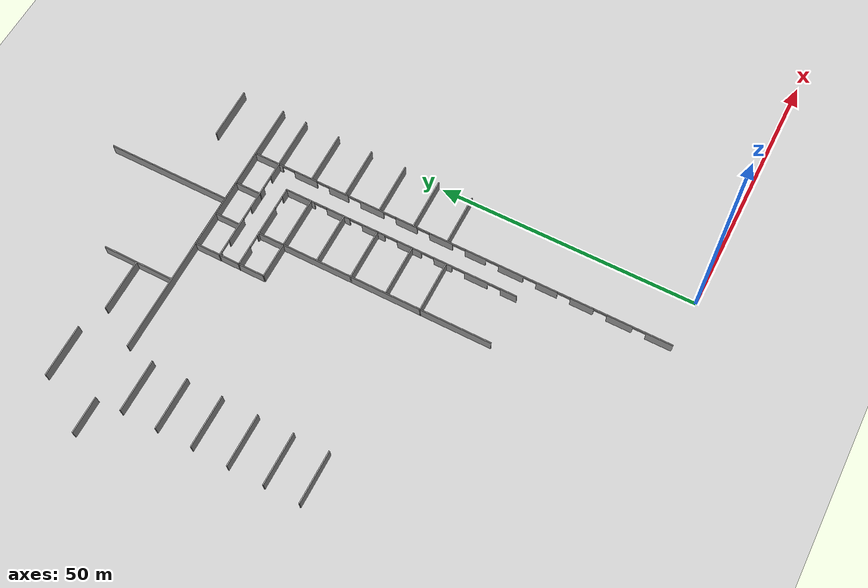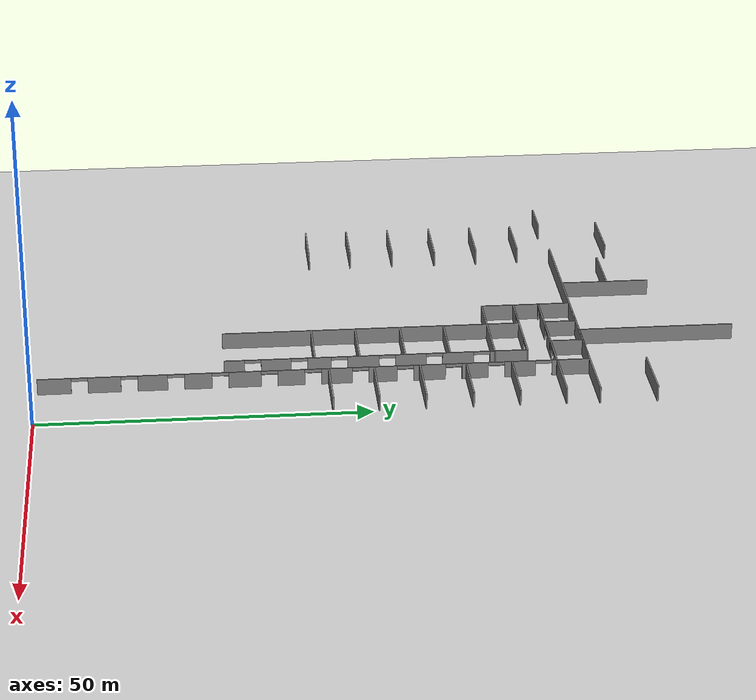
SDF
<sdf version="1.6">
 <world name="default">
  <model name="ground_plane">
   <static>1</static>
   <link name="link">
    <collision name="collision">
     <geometry><plane><normal>0 0 1</normal><size>100 100</size></plane></geometry>
     <surface><friction><ode><mu>100</mu><mu2>50</mu2></ode></friction></surface>
    </collision>
    <visual name="visual">
     <cast_shadows>0</cast_shadows>
     <geometry><plane><normal>0 0 1</normal><size>100 100</size></plane></geometry>
     <material>
      <script><uri>file://media/materials/scripts/gazebo.material</uri><name>Gazebo/Grey</name></script>
     </material>
    </visual>
   </link>
  </model>
  <model name="Jacaranda_v4">
   <link name="Wall_0">
    <pose>-8.84429 26.2823 0 0 -0 0</pose>
    <visual name="Wall_0_Visual_0">
     <pose>-10.1136 0 1.25 0 -0 0</pose>
     <geometry><box><size>0.772872 0.2 2.5</size></box></geometry>
     <material>
      <script><uri>file://media/materials/scripts/gazebo.material</uri><name>Gazebo/Grey</name></script>
     </material>
    </visual>
    <collision name="Wall_0_Collision_0">
     <geometry><box><size>0.772872 0.2 2.5</size></box></geometry>
     <pose>-10.1136 0 1.25 0 -0 0</pose>
    </collision>
    <visual name="Wall_0_Visual_1">
     <pose>-4.7572 0 1.25 0 -0 0</pose>
     <geometry><box><size>4.93987 0.2 2.5</size></box></geometry>
     <material>
      <script><uri>file://media/materials/scripts/gazebo.material</uri><name>Gazebo/Grey</name></script>
     </material>
    </visual>
    <collision name="Wall_0_Collision_1">
     <geometry><box><size>4.93987 0.2 2.5</size></box></geometry>
     <pose>-4.7572 0 1.25 0 -0 0</pose>
    </collision>
    <visual name="Wall_0_Visual_2">
     <pose>2.52116 0 1.25 0 -0 0</pose>
     <geometry><box><size>4.61684 0.2 2.5</size></box></geometry>
     <material>
      <script><uri>file://media/materials/scripts/gazebo.material</uri><name>Gazebo/Grey</name></script>
     </material>
    </visual>
    <collision name="Wall_0_Collision_2">
     <geometry><box><size>4.61684 0.2 2.5</size></box></geometry>
     <pose>2.52116 0 1.25 0 -0 0</pose>
    </collision>
    <visual name="Wall_0_Visual_3">
     <pose>8.91479 0 1.25 0 -0 0</pose>
     <geometry><box><size>3.17042 0.2 2.5</size></box></geometry>
     <material>
      <script><uri>file://media/materials/scripts/gazebo.material</uri><name>Gazebo/Grey</name></script>
     </material>
    </visual>
    <collision name="Wall_0_Collision_3">
     <geometry><box><size>3.17042 0.2 2.5</size></box></geometry>
     <pose>8.91479 0 1.25 0 -0 0</pose>
    </collision>
    <visual name="Wall_0_Visual_4">
     <pose>-8.47713 0 2.25 0 -0 0</pose>
     <geometry><box><size>2.5 0.2 0.5</size></box></geometry>
     <material>
      <script><uri>file://media/materials/scripts/gazebo.material</uri><name>Gazebo/Grey</name></script>
     </material>
    </visual>
    <collision name="Wall_0_Collision_4">
     <geometry><box><size>2.5 0.2 0.5</size></box></geometry>
     <pose>-8.47713 0 2.25 0 -0 0</pose>
    </collision>
    <visual name="Wall_0_Visual_5">
     <pose>-1.03726 0 2.25 0 -0 0</pose>
     <geometry><box><size>2.5 0.2 0.5</size></box></geometry>
     <material>
      <script><uri>file://media/materials/scripts/gazebo.material</uri><name>Gazebo/Grey</name></script>
     </material>
    </visual>
    <collision name="Wall_0_Collision_5">
     <geometry><box><size>2.5 0.2 0.5</size></box></geometry>
     <pose>-1.03726 0 2.25 0 -0 0</pose>
    </collision>
    <visual name="Wall_0_Visual_6">
     <pose>6.07958 0 2.25 0 -0 0</pose>
     <geometry><box><size>2.5 0.2 0.5</size></box></geometry>
     <material>
      <script><uri>file://media/materials/scripts/gazebo.material</uri><name>Gazebo/Grey</name></script>
     </material>
    </visual>
    <collision name="Wall_0_Collision_6">
     <geometry><box><size>2.5 0.2 0.5</size></box></geometry>
     <pose>6.07958 0 2.25 0 -0 0</pose>
    </collision>
   </link>
   <link name="Wall_2">
    <collision name="Wall_2_Collision">
     <geometry><box><size>10 0.2 2.5</size></box></geometry>
     <pose>0 0 1.25 0 -0 0</pose>
    </collision>
    <visual name="Wall_2_Visual">
     <pose>0 0 1.25 0 -0 0</pose>
     <geometry><box><size>10 0.2 2.5</size></box></geometry>
     <material>
      <script><uri>file://media/materials/scripts/gazebo.material</uri><name>Gazebo/Grey</name></script>
     </material>
    </visual>
    <velocity_decay><linear>0</linear><angular>0</angular></velocity_decay>
    <pose>-7.44654 3.56016 0 0 -0 0</pose>
   </link>
   <link name="Wall_22">
    <collision name="Wall_22_Collision">
     <geometry><box><size>5 0.2 2.5</size></box></geometry>
     <pose>0 0 1.25 0 -0 0</pose>
    </collision>
    <visual name="Wall_22_Visual">
     <pose>0 0 1.25 0 -0 0</pose>
     <geometry><box><size>5 0.2 2.5</size></box></geometry>
     <material>
      <script><uri>file://media/materials/scripts/gazebo.material</uri><name>Gazebo/Grey</name></script>
     </material>
    </visual>
    <velocity_decay><linear>0</linear><angular>0</angular></velocity_decay>
    <pose>-19.2226 28.7685 0 0 -0 1.5708</pose>
   </link>
   <link name="Wall_24">
    <collision name="Wall_24_Collision">
     <geometry><box><size>7 0.2 2.5</size></box></geometry>
     <pose>0 0 1.25 0 -0 0</pose>
    </collision>
    <visual name="Wall_24_Visual">
     <pose>0 0 1.25 0 -0 0</pose>
     <geometry><box><size>7 0.2 2.5</size></box></geometry>
     <material>
      <script><uri>file://media/materials/scripts/gazebo.material</uri><name>Gazebo/Grey</name></script>
     </material>
    </visual>
    <velocity_decay><linear>0</linear><angular>0</angular></velocity_decay>
    <pose>-15.7827 31.2426 0 0 -0 0</pose>
   </link>
   <link name="Wall_26">
    <collision name="Wall_26_Collision">
     <geometry><box><size>5 0.2 2.5</size></box></geometry>
     <pose>0 0 1.25 0 -0 0</pose>
    </collision>
    <visual name="Wall_26_Visual">
     <pose>0 0 1.25 0 -0 0</pose>
     <geometry><box><size>5 0.2 2.5</size></box></geometry>
     <material>
      <script><uri>file://media/materials/scripts/gazebo.material</uri><name>Gazebo/Grey</name></script>
     </material>
    </visual>
    <velocity_decay><linear>0</linear><angular>0</angular></velocity_decay>
    <pose>-12.42 28.8426 0 0 0 -1.5708</pose>
   </link>
   <link name="Wall_29">
    <collision name="Wall_29_Collision">
     <geometry><box><size>7 0.2 2.5</size></box></geometry>
     <pose>0 0 1.25 0 -0 0</pose>
    </collision>
    <visual name="Wall_29_Visual">
     <pose>0 0 1.25 0 -0 0</pose>
     <geometry><box><size>7 0.2 2.5</size></box></geometry>
     <material>
      <script><uri>file://media/materials/scripts/gazebo.material</uri><name>Gazebo/Grey</name></script>
     </material>
    </visual>
    <velocity_decay><linear>0</linear><angular>0</angular></velocity_decay>
    <pose>-8.85634 31.2426 0 0 -0 0</pose>
   </link>
   <link name="Wall_31">
    <collision name="Wall_31_Collision">
     <geometry><box><size>5 0.2 2.5</size></box></geometry>
     <pose>0 0 1.25 0 -0 0</pose>
    </collision>
    <visual name="Wall_31_Visual">
     <pose>0 0 1.25 0 -0 0</pose>
     <geometry><box><size>5 0.2 2.5</size></box></geometry>
     <material>
      <script><uri>file://media/materials/scripts/gazebo.material</uri><name>Gazebo/Grey</name></script>
     </material>
    </visual>
    <velocity_decay><linear>0</linear><angular>0</angular></velocity_decay>
    <pose>-5.3828 28.6789 0 0 0 -1.5708</pose>
   </link>
   <link name="Wall_33">
    <collision name="Wall_33_Collision">
     <geometry><box><size>7 0.2 2.5</size></box></geometry>
     <pose>0 0 1.25 0 -0 0</pose>
    </collision>
    <visual name="Wall_33_Visual">
     <pose>0 0 1.25 0 -0 0</pose>
     <geometry><box><size>7 0.2 2.5</size></box></geometry>
     <material>
      <script><uri>file://media/materials/scripts/gazebo.material</uri><name>Gazebo/Grey</name></script>
     </material>
    </visual>
    <velocity_decay><linear>0</linear><angular>0</angular></velocity_decay>
    <pose>-1.87207 31.2789 0 0 -0 0</pose>
   </link>
   <link name="Wall_35">
    <pose>1.50679 -10.3195 0 0 0 -1.5708</pose>
    <visual name="Wall_35_Visual_0">
     <pose>-38.7718 0 1.25 0 -0 0</pose>
     <geometry><box><size>5.89333 0.2 2.5</size></box></geometry>
     <material>
      <script><uri>file://media/materials/scripts/gazebo.material</uri><name>Gazebo/Grey</name></script>
     </material>
    </visual>
    <collision name="Wall_35_Collision_0">
     <geometry><box><size>5.89333 0.2 2.5</size></box></geometry>
     <pose>-38.7718 0 1.25 0 -0 0</pose>
    </collision>
    <visual name="Wall_35_Visual_1">
     <pose>-30.9611 0 1.25 0 -0 0</pose>
     <geometry><box><size>4.72808 0.2 2.5</size></box></geometry>
     <material>
      <script><uri>file://media/materials/scripts/gazebo.material</uri><name>Gazebo/Grey</name></script>
     </material>
    </visual>
    <collision name="Wall_35_Collision_1">
     <geometry><box><size>4.72808 0.2 2.5</size></box></geometry>
     <pose>-30.9611 0 1.25 0 -0 0</pose>
    </collision>
    <visual name="Wall_35_Visual_2">
     <pose>-24.0927 0 1.25 0 -0 0</pose>
     <geometry><box><size>4.00867 0.2 2.5</size></box></geometry>
     <material>
      <script><uri>file://media/materials/scripts/gazebo.material</uri><name>Gazebo/Grey</name></script>
     </material>
    </visual>
    <collision name="Wall_35_Collision_2">
     <geometry><box><size>4.00867 0.2 2.5</size></box></geometry>
     <pose>-24.0927 0 1.25 0 -0 0</pose>
    </collision>
    <visual name="Wall_35_Visual_3">
     <pose>-17.1876 0 1.25 0 -0 0</pose>
     <geometry><box><size>4.80162 0.2 2.5</size></box></geometry>
     <material>
      <script><uri>file://media/materials/scripts/gazebo.material</uri><name>Gazebo/Grey</name></script>
     </material>
    </visual>
    <collision name="Wall_35_Collision_3">
     <geometry><box><size>4.80162 0.2 2.5</size></box></geometry>
     <pose>-17.1876 0 1.25 0 -0 0</pose>
    </collision>
    <visual name="Wall_35_Visual_4">
     <pose>-10.1336 0 1.25 0 -0 0</pose>
     <geometry><box><size>4.3064 0.2 2.5</size></box></geometry>
     <material>
      <script><uri>file://media/materials/scripts/gazebo.material</uri><name>Gazebo/Grey</name></script>
     </material>
    </visual>
    <collision name="Wall_35_Collision_4">
     <geometry><box><size>4.3064 0.2 2.5</size></box></geometry>
     <pose>-10.1336 0 1.25 0 -0 0</pose>
    </collision>
    <visual name="Wall_35_Visual_5">
     <pose>-3.14147 0 1.25 0 -0 0</pose>
     <geometry><box><size>4.67776 0.2 2.5</size></box></geometry>
     <material>
      <script><uri>file://media/materials/scripts/gazebo.material</uri><name>Gazebo/Grey</name></script>
     </material>
    </visual>
    <collision name="Wall_35_Collision_5">
     <geometry><box><size>4.67776 0.2 2.5</size></box></geometry>
     <pose>-3.14147 0 1.25 0 -0 0</pose>
    </collision>
    <visual name="Wall_35_Visual_6">
     <pose>3.7295 0 1.25 0 -0 0</pose>
     <geometry><box><size>4.06418 0.2 2.5</size></box></geometry>
     <material>
      <script><uri>file://media/materials/scripts/gazebo.material</uri><name>Gazebo/Grey</name></script>
     </material>
    </visual>
    <collision name="Wall_35_Collision_6">
     <geometry><box><size>4.06418 0.2 2.5</size></box></geometry>
     <pose>3.7295 0 1.25 0 -0 0</pose>
    </collision>
    <visual name="Wall_35_Visual_7">
     <pose>10.6976 0 1.25 0 -0 0</pose>
     <geometry><box><size>4.872 0.2 2.5</size></box></geometry>
     <material>
      <script><uri>file://media/materials/scripts/gazebo.material</uri><name>Gazebo/Grey</name></script>
     </material>
    </visual>
    <collision name="Wall_35_Collision_7">
     <geometry><box><size>4.872 0.2 2.5</size></box></geometry>
     <pose>10.6976 0 1.25 0 -0 0</pose>
    </collision>
    <visual name="Wall_35_Visual_8">
     <pose>17.7003 0 1.25 0 -0 0</pose>
     <geometry><box><size>4.13333 0.2 2.5</size></box></geometry>
     <material>
      <script><uri>file://media/materials/scripts/gazebo.material</uri><name>Gazebo/Grey</name></script>
     </material>
    </visual>
    <collision name="Wall_35_Collision_8">
     <geometry><box><size>4.13333 0.2 2.5</size></box></geometry>
     <pose>17.7003 0 1.25 0 -0 0</pose>
    </collision>
    <visual name="Wall_35_Visual_9">
     <pose>24.507 0 1.25 0 -0 0</pose>
     <geometry><box><size>4.48015 0.2 2.5</size></box></geometry>
     <material>
      <script><uri>file://media/materials/scripts/gazebo.material</uri><name>Gazebo/Grey</name></script>
     </material>
    </visual>
    <collision name="Wall_35_Collision_9">
     <geometry><box><size>4.48015 0.2 2.5</size></box></geometry>
     <pose>24.507 0 1.25 0 -0 0</pose>
    </collision>
    <visual name="Wall_35_Visual_10">
     <pose>31.7056 0 1.25 0 -0 0</pose>
     <geometry><box><size>4.91715 0.2 2.5</size></box></geometry>
     <material>
      <script><uri>file://media/materials/scripts/gazebo.material</uri><name>Gazebo/Grey</name></script>
     </material>
    </visual>
    <collision name="Wall_35_Collision_10">
     <geometry><box><size>4.91715 0.2 2.5</size></box></geometry>
     <pose>31.7056 0 1.25 0 -0 0</pose>
    </collision>
    <visual name="Wall_35_Visual_11">
     <pose>39.1913 0 1.25 0 -0 0</pose>
     <geometry><box><size>5.05424 0.2 2.5</size></box></geometry>
     <material>
      <script><uri>file://media/materials/scripts/gazebo.material</uri><name>Gazebo/Grey</name></script>
     </material>
    </visual>
    <collision name="Wall_35_Collision_11">
     <geometry><box><size>5.05424 0.2 2.5</size></box></geometry>
     <pose>39.1913 0 1.25 0 -0 0</pose>
    </collision>
    <visual name="Wall_35_Visual_12">
     <pose>-34.5751 0 2.25 0 -0 0</pose>
     <geometry><box><size>2.5 0.2 0.5</size></box></geometry>
     <material>
      <script><uri>file://media/materials/scripts/gazebo.material</uri><name>Gazebo/Grey</name></script>
     </material>
    </visual>
    <collision name="Wall_35_Collision_12">
     <geometry><box><size>2.5 0.2 0.5</size></box></geometry>
     <pose>-34.5751 0 2.25 0 -0 0</pose>
    </collision>
    <visual name="Wall_35_Visual_13">
     <pose>-27.347 0 2.25 0 -0 0</pose>
     <geometry><box><size>2.5 0.2 0.5</size></box></geometry>
     <material>
      <script><uri>file://media/materials/scripts/gazebo.material</uri><name>Gazebo/Grey</name></script>
     </material>
    </visual>
    <collision name="Wall_35_Collision_13">
     <geometry><box><size>2.5 0.2 0.5</size></box></geometry>
     <pose>-27.347 0 2.25 0 -0 0</pose>
    </collision>
    <visual name="Wall_35_Visual_14">
     <pose>-20.8384 0 2.25 0 -0 0</pose>
     <geometry><box><size>2.5 0.2 0.5</size></box></geometry>
     <material>
      <script><uri>file://media/materials/scripts/gazebo.material</uri><name>Gazebo/Grey</name></script>
     </material>
    </visual>
    <collision name="Wall_35_Collision_14">
     <geometry><box><size>2.5 0.2 0.5</size></box></geometry>
     <pose>-20.8384 0 2.25 0 -0 0</pose>
    </collision>
    <visual name="Wall_35_Visual_15">
     <pose>-13.5368 0 2.25 0 -0 0</pose>
     <geometry><box><size>2.5 0.2 0.5</size></box></geometry>
     <material>
      <script><uri>file://media/materials/scripts/gazebo.material</uri><name>Gazebo/Grey</name></script>
     </material>
    </visual>
    <collision name="Wall_35_Collision_15">
     <geometry><box><size>2.5 0.2 0.5</size></box></geometry>
     <pose>-13.5368 0 2.25 0 -0 0</pose>
    </collision>
    <visual name="Wall_35_Visual_16">
     <pose>-6.73035 0 2.25 0 -0 0</pose>
     <geometry><box><size>2.5 0.2 0.5</size></box></geometry>
     <material>
      <script><uri>file://media/materials/scripts/gazebo.material</uri><name>Gazebo/Grey</name></script>
     </material>
    </visual>
    <collision name="Wall_35_Collision_16">
     <geometry><box><size>2.5 0.2 0.5</size></box></geometry>
     <pose>-6.73035 0 2.25 0 -0 0</pose>
    </collision>
    <visual name="Wall_35_Visual_17">
     <pose>0.447409 0 2.25 0 -0 0</pose>
     <geometry><box><size>2.5 0.2 0.5</size></box></geometry>
     <material>
      <script><uri>file://media/materials/scripts/gazebo.material</uri><name>Gazebo/Grey</name></script>
     </material>
    </visual>
    <collision name="Wall_35_Collision_17">
     <geometry><box><size>2.5 0.2 0.5</size></box></geometry>
     <pose>0.447409 0 2.25 0 -0 0</pose>
    </collision>
    <visual name="Wall_35_Visual_18">
     <pose>7.01159 0 2.25 0 -0 0</pose>
     <geometry><box><size>2.5 0.2 0.5</size></box></geometry>
     <material>
      <script><uri>file://media/materials/scripts/gazebo.material</uri><name>Gazebo/Grey</name></script>
     </material>
    </visual>
    <collision name="Wall_35_Collision_18">
     <geometry><box><size>2.5 0.2 0.5</size></box></geometry>
     <pose>7.01159 0 2.25 0 -0 0</pose>
    </collision>
    <visual name="Wall_35_Visual_19">
     <pose>14.3836 0 2.25 0 -0 0</pose>
     <geometry><box><size>2.5 0.2 0.5</size></box></geometry>
     <material>
      <script><uri>file://media/materials/scripts/gazebo.material</uri><name>Gazebo/Grey</name></script>
     </material>
    </visual>
    <collision name="Wall_35_Collision_19">
     <geometry><box><size>2.5 0.2 0.5</size></box></geometry>
     <pose>14.3836 0 2.25 0 -0 0</pose>
    </collision>
    <visual name="Wall_35_Visual_20">
     <pose>21.0169 0 2.25 0 -0 0</pose>
     <geometry><box><size>2.5 0.2 0.5</size></box></geometry>
     <material>
      <script><uri>file://media/materials/scripts/gazebo.material</uri><name>Gazebo/Grey</name></script>
     </material>
    </visual>
    <collision name="Wall_35_Collision_20">
     <geometry><box><size>2.5 0.2 0.5</size></box></geometry>
     <pose>21.0169 0 2.25 0 -0 0</pose>
    </collision>
    <visual name="Wall_35_Visual_21">
     <pose>27.9971 0 2.25 0 -0 0</pose>
     <geometry><box><size>2.5 0.2 0.5</size></box></geometry>
     <material>
      <script><uri>file://media/materials/scripts/gazebo.material</uri><name>Gazebo/Grey</name></script>
     </material>
    </visual>
    <collision name="Wall_35_Collision_21">
     <geometry><box><size>2.5 0.2 0.5</size></box></geometry>
     <pose>27.9971 0 2.25 0 -0 0</pose>
    </collision>
    <visual name="Wall_35_Visual_22">
     <pose>35.4142 0 2.25 0 -0 0</pose>
     <geometry><box><size>2.5 0.2 0.5</size></box></geometry>
     <material>
      <script><uri>file://media/materials/scripts/gazebo.material</uri><name>Gazebo/Grey</name></script>
     </material>
    </visual>
    <collision name="Wall_35_Collision_22">
     <geometry><box><size>2.5 0.2 0.5</size></box></geometry>
     <pose>35.4142 0 2.25 0 -0 0</pose>
    </collision>
   </link>
   <link name="Wall_39">
    <collision name="Wall_39_Collision">
     <geometry><box><size>4 0.2 2.5</size></box></geometry>
     <pose>0 0 1.25 0 -0 0</pose>
    </collision>
    <visual name="Wall_39_Visual">
     <pose>0 0 1.25 0 -0 0</pose>
     <geometry><box><size>4 0.2 2.5</size></box></geometry>
     <material>
      <script><uri>file://media/materials/scripts/gazebo.material</uri><name>Gazebo/Grey</name></script>
     </material>
    </visual>
    <velocity_decay><linear>0</linear><angular>0</angular></velocity_decay>
    <pose>-19.206 24.2121 0 0 0 -1.5708</pose>
   </link>
   <link name="Wall_41">
    <pose>-10.8339 22.3118 0 0 -0 0</pose>
    <visual name="Wall_41_Visual_0">
     <pose>-6.54675 0 1.25 0 -0 0</pose>
     <geometry><box><size>3.9065 0.2 2.5</size></box></geometry>
     <material>
      <script><uri>file://media/materials/scripts/gazebo.material</uri><name>Gazebo/Grey</name></script>
     </material>
    </visual>
    <collision name="Wall_41_Collision_0">
     <geometry><box><size>3.9065 0.2 2.5</size></box></geometry>
     <pose>-6.54675 0 1.25 0 -0 0</pose>
    </collision>
    <visual name="Wall_41_Visual_1">
     <pose>1.04072 0 1.25 0 -0 0</pose>
     <geometry><box><size>6.26843 0.2 2.5</size></box></geometry>
     <material>
      <script><uri>file://media/materials/scripts/gazebo.material</uri><name>Gazebo/Grey</name></script>
     </material>
    </visual>
    <collision name="Wall_41_Collision_1">
     <geometry><box><size>6.26843 0.2 2.5</size></box></geometry>
     <pose>1.04072 0 1.25 0 -0 0</pose>
    </collision>
    <visual name="Wall_41_Visual_2">
     <pose>7.58747 0 1.25 0 -0 0</pose>
     <geometry><box><size>1.82507 0.2 2.5</size></box></geometry>
     <material>
      <script><uri>file://media/materials/scripts/gazebo.material</uri><name>Gazebo/Grey</name></script>
     </material>
    </visual>
    <collision name="Wall_41_Collision_2">
     <geometry><box><size>1.82507 0.2 2.5</size></box></geometry>
     <pose>7.58747 0 1.25 0 -0 0</pose>
    </collision>
    <visual name="Wall_41_Visual_3">
     <pose>-3.3435 0 2.25 0 -0 0</pose>
     <geometry><box><size>2.5 0.2 0.5</size></box></geometry>
     <material>
      <script><uri>file://media/materials/scripts/gazebo.material</uri><name>Gazebo/Grey</name></script>
     </material>
    </visual>
    <collision name="Wall_41_Collision_3">
     <geometry><box><size>2.5 0.2 0.5</size></box></geometry>
     <pose>-3.3435 0 2.25 0 -0 0</pose>
    </collision>
    <visual name="Wall_41_Visual_4">
     <pose>5.42493 0 2.25 0 -0 0</pose>
     <geometry><box><size>2.5 0.2 0.5</size></box></geometry>
     <material>
      <script><uri>file://media/materials/scripts/gazebo.material</uri><name>Gazebo/Grey</name></script>
     </material>
    </visual>
    <collision name="Wall_41_Collision_4">
     <geometry><box><size>2.5 0.2 0.5</size></box></geometry>
     <pose>5.42493 0 2.25 0 -0 0</pose>
    </collision>
   </link>
   <link name="Wall_43">
    <pose>-2.46558 -0.8445 0 0 0 -1.5708</pose>
    <visual name="Wall_43_Visual_0">
     <pose>-20.2936 0 1.25 0 -0 0</pose>
     <geometry><box><size>5.88874 0.2 2.5</size></box></geometry>
     <material>
      <script><uri>file://media/materials/scripts/gazebo.material</uri><name>Gazebo/Grey</name></script>
     </material>
    </visual>
    <collision name="Wall_43_Collision_0">
     <geometry><box><size>5.88874 0.2 2.5</size></box></geometry>
     <pose>-20.2936 0 1.25 0 -0 0</pose>
    </collision>
    <visual name="Wall_43_Visual_1">
     <pose>-12.4598 0 1.25 0 -0 0</pose>
     <geometry><box><size>4.77894 0.2 2.5</size></box></geometry>
     <material>
      <script><uri>file://media/materials/scripts/gazebo.material</uri><name>Gazebo/Grey</name></script>
     </material>
    </visual>
    <collision name="Wall_43_Collision_1">
     <geometry><box><size>4.77894 0.2 2.5</size></box></geometry>
     <pose>-12.4598 0 1.25 0 -0 0</pose>
    </collision>
    <visual name="Wall_43_Visual_2">
     <pose>-5.24423 0 1.25 0 -0 0</pose>
     <geometry><box><size>4.65218 0.2 2.5</size></box></geometry>
     <material>
      <script><uri>file://media/materials/scripts/gazebo.material</uri><name>Gazebo/Grey</name></script>
     </material>
    </visual>
    <collision name="Wall_43_Collision_2">
     <geometry><box><size>4.65218 0.2 2.5</size></box></geometry>
     <pose>-5.24423 0 1.25 0 -0 0</pose>
    </collision>
    <visual name="Wall_43_Visual_3">
     <pose>2.00205 0 1.25 0 -0 0</pose>
     <geometry><box><size>4.84039 0.2 2.5</size></box></geometry>
     <material>
      <script><uri>file://media/materials/scripts/gazebo.material</uri><name>Gazebo/Grey</name></script>
     </material>
    </visual>
    <collision name="Wall_43_Collision_3">
     <geometry><box><size>4.84039 0.2 2.5</size></box></geometry>
     <pose>2.00205 0 1.25 0 -0 0</pose>
    </collision>
    <visual name="Wall_43_Visual_4">
     <pose>8.7199 0 1.25 0 -0 0</pose>
     <geometry><box><size>3.5953 0.2 2.5</size></box></geometry>
     <material>
      <script><uri>file://media/materials/scripts/gazebo.material</uri><name>Gazebo/Grey</name></script>
     </material>
    </visual>
    <collision name="Wall_43_Collision_4">
     <geometry><box><size>3.5953 0.2 2.5</size></box></geometry>
     <pose>8.7199 0 1.25 0 -0 0</pose>
    </collision>
    <visual name="Wall_43_Visual_5">
     <pose>15.2946 0 1.25 0 -0 0</pose>
     <geometry><box><size>4.55401 0.2 2.5</size></box></geometry>
     <material>
      <script><uri>file://media/materials/scripts/gazebo.material</uri><name>Gazebo/Grey</name></script>
     </material>
    </visual>
    <collision name="Wall_43_Collision_5">
     <geometry><box><size>4.55401 0.2 2.5</size></box></geometry>
     <pose>15.2946 0 1.25 0 -0 0</pose>
    </collision>
    <visual name="Wall_43_Visual_6">
     <pose>21.6548 0 1.25 0 -0 0</pose>
     <geometry><box><size>3.16644 0.2 2.5</size></box></geometry>
     <material>
      <script><uri>file://media/materials/scripts/gazebo.material</uri><name>Gazebo/Grey</name></script>
     </material>
    </visual>
    <collision name="Wall_43_Collision_6">
     <geometry><box><size>3.16644 0.2 2.5</size></box></geometry>
     <pose>21.6548 0 1.25 0 -0 0</pose>
    </collision>
    <visual name="Wall_43_Visual_7">
     <pose>-16.0993 0 2.25 0 -0 0</pose>
     <geometry><box><size>2.5 0.2 0.5</size></box></geometry>
     <material>
      <script><uri>file://media/materials/scripts/gazebo.material</uri><name>Gazebo/Grey</name></script>
     </material>
    </visual>
    <collision name="Wall_43_Collision_7">
     <geometry><box><size>2.5 0.2 0.5</size></box></geometry>
     <pose>-16.0993 0 2.25 0 -0 0</pose>
    </collision>
    <visual name="Wall_43_Visual_8">
     <pose>-8.82032 0 2.25 0 -0 0</pose>
     <geometry><box><size>2.5 0.2 0.5</size></box></geometry>
     <material>
      <script><uri>file://media/materials/scripts/gazebo.material</uri><name>Gazebo/Grey</name></script>
     </material>
    </visual>
    <collision name="Wall_43_Collision_8">
     <geometry><box><size>2.5 0.2 0.5</size></box></geometry>
     <pose>-8.82032 0 2.25 0 -0 0</pose>
    </collision>
    <visual name="Wall_43_Visual_9">
     <pose>-1.66814 0 2.25 0 -0 0</pose>
     <geometry><box><size>2.5 0.2 0.5</size></box></geometry>
     <material>
      <script><uri>file://media/materials/scripts/gazebo.material</uri><name>Gazebo/Grey</name></script>
     </material>
    </visual>
    <collision name="Wall_43_Collision_9">
     <geometry><box><size>2.5 0.2 0.5</size></box></geometry>
     <pose>-1.66814 0 2.25 0 -0 0</pose>
    </collision>
    <visual name="Wall_43_Visual_10">
     <pose>5.67225 0 2.25 0 -0 0</pose>
     <geometry><box><size>2.5 0.2 0.5</size></box></geometry>
     <material>
      <script><uri>file://media/materials/scripts/gazebo.material</uri><name>Gazebo/Grey</name></script>
     </material>
    </visual>
    <collision name="Wall_43_Collision_10">
     <geometry><box><size>2.5 0.2 0.5</size></box></geometry>
     <pose>5.67225 0 2.25 0 -0 0</pose>
    </collision>
    <visual name="Wall_43_Visual_11">
     <pose>11.7676 0 2.25 0 -0 0</pose>
     <geometry><box><size>2.5 0.2 0.5</size></box></geometry>
     <material>
      <script><uri>file://media/materials/scripts/gazebo.material</uri><name>Gazebo/Grey</name></script>
     </material>
    </visual>
    <collision name="Wall_43_Collision_11">
     <geometry><box><size>2.5 0.2 0.5</size></box></geometry>
     <pose>11.7676 0 2.25 0 -0 0</pose>
    </collision>
    <visual name="Wall_43_Visual_12">
     <pose>18.8216 0 2.25 0 -0 0</pose>
     <geometry><box><size>2.5 0.2 0.5</size></box></geometry>
     <material>
      <script><uri>file://media/materials/scripts/gazebo.material</uri><name>Gazebo/Grey</name></script>
     </material>
    </visual>
    <collision name="Wall_43_Collision_12">
     <geometry><box><size>2.5 0.2 0.5</size></box></geometry>
     <pose>18.8216 0 2.25 0 -0 0</pose>
    </collision>
   </link>
   <link name="Wall_45">
    <collision name="Wall_45_Collision">
     <geometry><box><size>5 0.2 2.5</size></box></geometry>
     <pose>0 0 1.25 0 -0 0</pose>
    </collision>
    <visual name="Wall_45_Visual">
     <pose>0 0 1.25 0 -0 0</pose>
     <geometry><box><size>5 0.2 2.5</size></box></geometry>
     <material>
      <script><uri>file://media/materials/scripts/gazebo.material</uri><name>Gazebo/Grey</name></script>
     </material>
    </visual>
    <velocity_decay><linear>0</linear><angular>0</angular></velocity_decay>
    <pose>-19.2149 19.8047 0 0 0 -1.5708</pose>
   </link>
   <link name="Wall_47">
    <collision name="Wall_47_Collision">
     <geometry><box><size>16.9069 0.2 2.5</size></box></geometry>
     <pose>0 0 1.25 0 -0 0</pose>
    </collision>
    <visual name="Wall_47_Visual">
     <pose>0 0 1.25 0 -0 0</pose>
     <geometry><box><size>16.9069 0.2 2.5</size></box></geometry>
     <material>
      <script><uri>file://media/materials/scripts/gazebo.material</uri><name>Gazebo/Grey</name></script>
     </material>
    </visual>
    <velocity_decay><linear>0</linear><angular>0</angular></velocity_decay>
    <pose>-10.7923 17.2628 0 0 -0 0</pose>
   </link>
   <link name="Wall_49">
    <collision name="Wall_49_Collision">
     <geometry><box><size>46.4765 0.2 2.5</size></box></geometry>
     <pose>0 0 1.25 0 -0 0</pose>
    </collision>
    <visual name="Wall_49_Visual">
     <pose>0 0 1.25 0 -0 0</pose>
     <geometry><box><size>46.4765 0.2 2.5</size></box></geometry>
     <material>
      <script><uri>file://media/materials/scripts/gazebo.material</uri><name>Gazebo/Grey</name></script>
     </material>
    </visual>
    <velocity_decay><linear>0</linear><angular>0</angular></velocity_decay>
    <pose>-12.3393 -0.801467 0 0 0 -1.5708</pose>
   </link>
   <link name="Wall_55">
    <collision name="Wall_55_Collision">
     <geometry><box><size>10 0.2 2.5</size></box></geometry>
     <pose>0 0 1.25 0 -0 0</pose>
    </collision>
    <visual name="Wall_55_Visual">
     <pose>0 0 1.25 0 -0 0</pose>
     <geometry><box><size>10 0.2 2.5</size></box></geometry>
     <material>
      <script><uri>file://media/materials/scripts/gazebo.material</uri><name>Gazebo/Grey</name></script>
     </material>
    </visual>
    <velocity_decay><linear>0</linear><angular>0</angular></velocity_decay>
    <pose>-7.39012 10.4267 0 0 -0 3.14159</pose>
   </link>
   <link name="Wall_59">
    <collision name="Wall_59_Collision">
     <geometry><box><size>10 0.2 2.5</size></box></geometry>
     <pose>0 0 1.25 0 -0 0</pose>
    </collision>
    <visual name="Wall_59_Visual">
     <pose>0 0 1.25 0 -0 0</pose>
     <geometry><box><size>10 0.2 2.5</size></box></geometry>
     <material>
      <script><uri>file://media/materials/scripts/gazebo.material</uri><name>Gazebo/Grey</name></script>
     </material>
    </visual>
    <velocity_decay><linear>0</linear><angular>0</angular></velocity_decay>
    <pose>-7.43285 -3.41806 0 0 -0 0</pose>
   </link>
   <link name="Wall_61">
    <collision name="Wall_61_Collision">
     <geometry><box><size>10 0.2 2.5</size></box></geometry>
     <pose>0 0 1.25 0 -0 0</pose>
    </collision>
    <visual name="Wall_61_Visual">
     <pose>0 0 1.25 0 -0 0</pose>
     <geometry><box><size>10 0.2 2.5</size></box></geometry>
     <material>
      <script><uri>file://media/materials/scripts/gazebo.material</uri><name>Gazebo/Grey</name></script>
     </material>
    </visual>
    <velocity_decay><linear>0</linear><angular>0</angular></velocity_decay>
    <pose>-7.44869 -10.2258 0 0 -0 0</pose>
   </link>
   <link name="Wall_67">
    <collision name="Wall_67_Collision">
     <geometry><box><size>10 0.2 2.5</size></box></geometry>
     <pose>0 0 1.25 0 -0 0</pose>
    </collision>
    <visual name="Wall_67_Visual">
     <pose>0 0 1.25 0 -0 0</pose>
     <geometry><box><size>10 0.2 2.5</size></box></geometry>
     <material>
      <script><uri>file://media/materials/scripts/gazebo.material</uri><name>Gazebo/Grey</name></script>
     </material>
    </visual>
    <velocity_decay><linear>0</linear><angular>0</angular></velocity_decay>
    <pose>6.51966 26.3099 0 0 -0 0</pose>
   </link>
   <link name="Wall_71">
    <collision name="Wall_71_Collision">
     <geometry><box><size>10 0.2 2.5</size></box></geometry>
     <pose>0 0 1.25 0 -0 0</pose>
    </collision>
    <visual name="Wall_71_Visual">
     <pose>0 0 1.25 0 -0 0</pose>
     <geometry><box><size>10 0.2 2.5</size></box></geometry>
     <material>
      <script><uri>file://media/materials/scripts/gazebo.material</uri><name>Gazebo/Grey</name></script>
     </material>
    </visual>
    <velocity_decay><linear>0</linear><angular>0</angular></velocity_decay>
    <pose>6.52213 19.3829 0 0 -0 0</pose>
   </link>
   <link name="Wall_73">
    <collision name="Wall_73_Collision">
     <geometry><box><size>10 0.2 2.5</size></box></geometry>
     <pose>0 0 1.25 0 -0 0</pose>
    </collision>
    <visual name="Wall_73_Visual">
     <pose>0 0 1.25 0 -0 0</pose>
     <geometry><box><size>10 0.2 2.5</size></box></geometry>
     <material>
      <script><uri>file://media/materials/scripts/gazebo.material</uri><name>Gazebo/Grey</name></script>
     </material>
    </visual>
    <velocity_decay><linear>0</linear><angular>0</angular></velocity_decay>
    <pose>6.52323 12.4215 0 0 -0 0</pose>
   </link>
   <link name="Wall_75">
    <collision name="Wall_75_Collision">
     <geometry><box><size>10 0.2 2.5</size></box></geometry>
     <pose>0 0 1.25 0 -0 0</pose>
    </collision>
    <visual name="Wall_75_Visual">
     <pose>0 0 1.25 0 -0 0</pose>
     <geometry><box><size>10 0.2 2.5</size></box></geometry>
     <material>
      <script><uri>file://media/materials/scripts/gazebo.material</uri><name>Gazebo/Grey</name></script>
     </material>
    </visual>
    <velocity_decay><linear>0</linear><angular>0</angular></velocity_decay>
    <pose>6.45075 5.39511 0 0 -0 0</pose>
   </link>
   <link name="Wall_77">
    <collision name="Wall_77_Collision">
     <geometry><box><size>10 0.2 2.5</size></box></geometry>
     <pose>0 0 1.25 0 -0 0</pose>
    </collision>
    <visual name="Wall_77_Visual">
     <pose>0 0 1.25 0 -0 0</pose>
     <geometry><box><size>10 0.2 2.5</size></box></geometry>
     <material>
      <script><uri>file://media/materials/scripts/gazebo.material</uri><name>Gazebo/Grey</name></script>
     </material>
    </visual>
    <velocity_decay><linear>0</linear><angular>0</angular></velocity_decay>
    <pose>6.41479 -1.55896 0 0 -0 0</pose>
   </link>
   <link name="Wall_79">
    <collision name="Wall_79_Collision">
     <geometry><box><size>10 0.2 2.5</size></box></geometry>
     <pose>0 0 1.25 0 -0 0</pose>
    </collision>
    <visual name="Wall_79_Visual">
     <pose>0 0 1.25 0 -0 0</pose>
     <geometry><box><size>10 0.2 2.5</size></box></geometry>
     <material>
      <script><uri>file://media/materials/scripts/gazebo.material</uri><name>Gazebo/Grey</name></script>
     </material>
    </visual>
    <velocity_decay><linear>0</linear><angular>0</angular></velocity_decay>
    <pose>6.41201 -8.39437 0 0 -0 0</pose>
   </link>
   <static>1</static>
   <pose>-11.5705 52.3804 0 0 -0 0</pose>
  </model>
  <model name="Jacaranda_v4_clone_0">
   <link name="Wall_110">
    <collision name="Wall_110_Collision">
     <geometry><box><size>53 0.2 2.5</size></box></geometry>
     <pose>0 0 1.25 0 -0 0</pose>
    </collision>
    <visual name="Wall_110_Visual">
     <pose>0 0 1.25 0 -0 0</pose>
     <geometry><box><size>53 0.2 2.5</size></box></geometry>
     <material>
      <script><uri>file://media/materials/scripts/gazebo.material</uri><name>Gazebo/Grey</name></script>
     </material>
    </visual>
    <velocity_decay><linear>0</linear><angular>0</angular></velocity_decay>
    <pose>-15.0842 -52.0158 0 0 -0 0</pose>
   </link>
   <link name="Wall_112">
    <collision name="Wall_112_Collision">
     <geometry><box><size>14 0.2 2.5</size></box></geometry>
     <pose>0 0 1.25 0 -0 0</pose>
    </collision>
    <visual name="Wall_112_Visual">
     <pose>0 0 1.25 0 -0 0</pose>
     <geometry><box><size>14 0.2 2.5</size></box></geometry>
     <material>
      <script><uri>file://media/materials/scripts/gazebo.material</uri><name>Gazebo/Grey</name></script>
     </material>
    </visual>
    <velocity_decay><linear>0</linear><angular>0</angular></velocity_decay>
    <pose>-27.4151 -45.0631 0 0 0 -1.5708</pose>
   </link>
   <link name="Wall_116">
    <collision name="Wall_116_Collision">
     <geometry><box><size>10 0.2 2.5</size></box></geometry>
     <pose>0 0 1.25 0 -0 0</pose>
    </collision>
    <visual name="Wall_116_Visual">
     <pose>0 0 1.25 0 -0 0</pose>
     <geometry><box><size>10 0.2 2.5</size></box></geometry>
     <material>
      <script><uri>file://media/materials/scripts/gazebo.material</uri><name>Gazebo/Grey</name></script>
     </material>
    </visual>
    <velocity_decay><linear>0</linear><angular>0</angular></velocity_decay>
    <pose>6.51408 -43.3984 0 0 -0 0</pose>
   </link>
   <link name="Wall_52">
    <collision name="Wall_52_Collision">
     <geometry><box><size>24.1932 0.2 2.5</size></box></geometry>
     <pose>0 0 1.25 0 -0 0</pose>
    </collision>
    <visual name="Wall_52_Visual">
     <pose>0 0 1.25 0 -0 0</pose>
     <geometry><box><size>24.1932 0.2 2.5</size></box></geometry>
     <material>
      <script><uri>file://media/materials/scripts/gazebo.material</uri><name>Gazebo/Grey</name></script>
     </material>
    </visual>
    <velocity_decay><linear>0</linear><angular>0</angular></velocity_decay>
    <pose>-9.37734 -40.0171 0 0 0 -1.5708</pose>
   </link>
   <link name="Wall_98">
    <collision name="Wall_98_Collision">
     <geometry><box><size>10 0.2 2.5</size></box></geometry>
     <pose>0 0 1.25 0 -0 0</pose>
    </collision>
    <visual name="Wall_98_Visual">
     <pose>0 0 1.25 0 -0 0</pose>
     <geometry><box><size>10 0.2 2.5</size></box></geometry>
     <material>
      <script><uri>file://media/materials/scripts/gazebo.material</uri><name>Gazebo/Grey</name></script>
     </material>
    </visual>
    <velocity_decay><linear>0</linear><angular>0</angular></velocity_decay>
    <pose>-32.3697 -44.7336 0 0 -0 0</pose>
   </link>
   <static>1</static>
   <pose>-11.2872 135.686 0 0 -0 0</pose>
  </model>
  <model name="Jacaranda_v4_clone">
   <link name="Wall_33">
    <collision name="Wall_33_Collision">
     <geometry><box><size>7 0.2 2.5</size></box></geometry>
     <pose>0 0 1.25 0 -0 0</pose>
    </collision>
    <visual name="Wall_33_Visual">
     <pose>0 0 1.25 0 -0 0</pose>
     <geometry><box><size>7 0.2 2.5</size></box></geometry>
     <material>
      <script><uri>file://media/materials/scripts/gazebo.material</uri><name>Gazebo/Grey</name></script>
     </material>
    </visual>
    <velocity_decay><linear>0</linear><angular>0</angular></velocity_decay>
    <pose>-1.87207 31.2789 0 0 -0 0</pose>
   </link>
   <link name="Wall_67">
    <collision name="Wall_67_Collision">
     <geometry><box><size>10 0.2 2.5</size></box></geometry>
     <pose>0 0 1.25 0 -0 0</pose>
    </collision>
    <visual name="Wall_67_Visual">
     <pose>0 0 1.25 0 -0 0</pose>
     <geometry><box><size>10 0.2 2.5</size></box></geometry>
     <material>
      <script><uri>file://media/materials/scripts/gazebo.material</uri><name>Gazebo/Grey</name></script>
     </material>
    </visual>
    <velocity_decay><linear>0</linear><angular>0</angular></velocity_decay>
    <pose>6.51966 26.3099 0 0 -0 0</pose>
   </link>
   <link name="Wall_71">
    <collision name="Wall_71_Collision">
     <geometry><box><size>10 0.2 2.5</size></box></geometry>
     <pose>0 0 1.25 0 -0 0</pose>
    </collision>
    <visual name="Wall_71_Visual">
     <pose>0 0 1.25 0 -0 0</pose>
     <geometry><box><size>10 0.2 2.5</size></box></geometry>
     <material>
      <script><uri>file://media/materials/scripts/gazebo.material</uri><name>Gazebo/Grey</name></script>
     </material>
    </visual>
    <velocity_decay><linear>0</linear><angular>0</angular></velocity_decay>
    <pose>6.52213 19.3829 0 0 -0 0</pose>
   </link>
   <link name="Wall_73">
    <collision name="Wall_73_Collision">
     <geometry><box><size>10 0.2 2.5</size></box></geometry>
     <pose>0 0 1.25 0 -0 0</pose>
    </collision>
    <visual name="Wall_73_Visual">
     <pose>0 0 1.25 0 -0 0</pose>
     <geometry><box><size>10 0.2 2.5</size></box></geometry>
     <material>
      <script><uri>file://media/materials/scripts/gazebo.material</uri><name>Gazebo/Grey</name></script>
     </material>
    </visual>
    <velocity_decay><linear>0</linear><angular>0</angular></velocity_decay>
    <pose>6.52323 12.4215 0 0 -0 0</pose>
   </link>
   <link name="Wall_75">
    <collision name="Wall_75_Collision">
     <geometry><box><size>10 0.2 2.5</size></box></geometry>
     <pose>0 0 1.25 0 -0 0</pose>
    </collision>
    <visual name="Wall_75_Visual">
     <pose>0 0 1.25 0 -0 0</pose>
     <geometry><box><size>10 0.2 2.5</size></box></geometry>
     <material>
      <script><uri>file://media/materials/scripts/gazebo.material</uri><name>Gazebo/Grey</name></script>
     </material>
    </visual>
    <velocity_decay><linear>0</linear><angular>0</angular></velocity_decay>
    <pose>6.45075 5.39511 0 0 -0 0</pose>
   </link>
   <link name="Wall_77">
    <collision name="Wall_77_Collision">
     <geometry><box><size>10 0.2 2.5</size></box></geometry>
     <pose>0 0 1.25 0 -0 0</pose>
    </collision>
    <visual name="Wall_77_Visual">
     <pose>0 0 1.25 0 -0 0</pose>
     <geometry><box><size>10 0.2 2.5</size></box></geometry>
     <material>
      <script><uri>file://media/materials/scripts/gazebo.material</uri><name>Gazebo/Grey</name></script>
     </material>
    </visual>
    <velocity_decay><linear>0</linear><angular>0</angular></velocity_decay>
    <pose>6.41479 -1.55896 0 0 -0 0</pose>
   </link>
   <link name="Wall_79">
    <collision name="Wall_79_Collision">
     <geometry><box><size>10 0.2 2.5</size></box></geometry>
     <pose>0 0 1.25 0 -0 0</pose>
    </collision>
    <visual name="Wall_79_Visual">
     <pose>0 0 1.25 0 -0 0</pose>
     <geometry><box><size>10 0.2 2.5</size></box></geometry>
     <material>
      <script><uri>file://media/materials/scripts/gazebo.material</uri><name>Gazebo/Grey</name></script>
     </material>
    </visual>
    <velocity_decay><linear>0</linear><angular>0</angular></velocity_decay>
    <pose>6.41201 -8.39437 0 0 -0 0</pose>
   </link>
   <static>1</static>
   <pose>-64.7461 51.9933 0 0 -0 0</pose>
  </model>
  <model name="Jacaranda_v4_clone_1">
   <link name="Wall_116">
    <collision name="Wall_116_Collision">
     <geometry><box><size>10 0.2 2.5</size></box></geometry>
     <pose>0 0 1.25 0 -0 0</pose>
    </collision>
    <visual name="Wall_116_Visual">
     <pose>0 0 1.25 0 -0 0</pose>
     <geometry><box><size>10 0.2 2.5</size></box></geometry>
     <material>
      <script><uri>file://media/materials/scripts/gazebo.material</uri><name>Gazebo/Grey</name></script>
     </material>
    </visual>
    <velocity_decay><linear>0</linear><angular>0</angular></velocity_decay>
    <pose>6.51408 -43.3984 0 0 -0 0</pose>
   </link>
   <static>1</static>
   <pose>-65.1832 136.528 0 0 -0 0</pose>
  </model>
 </world>
</sdf>
